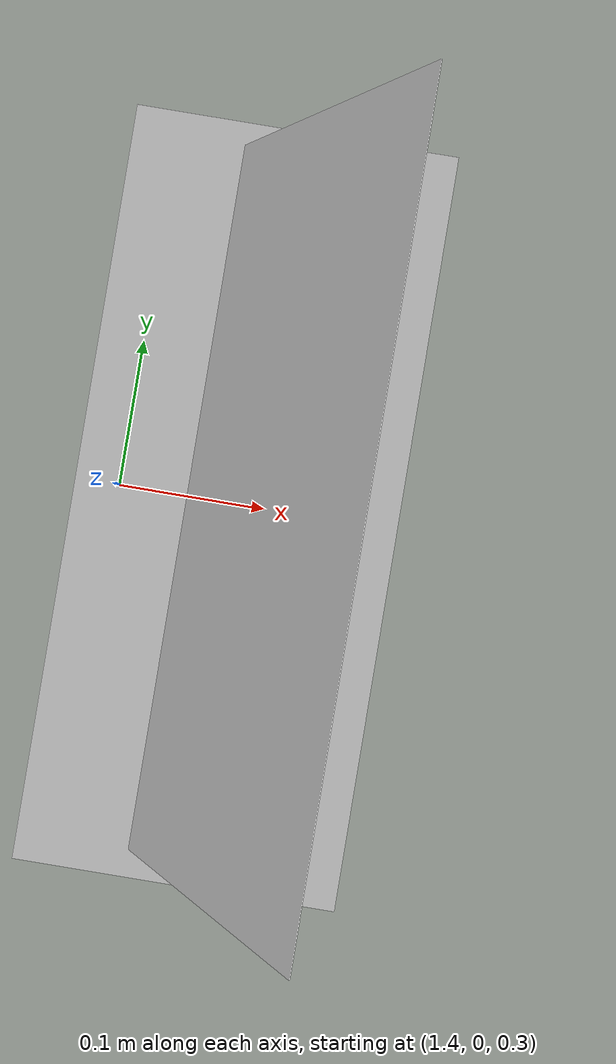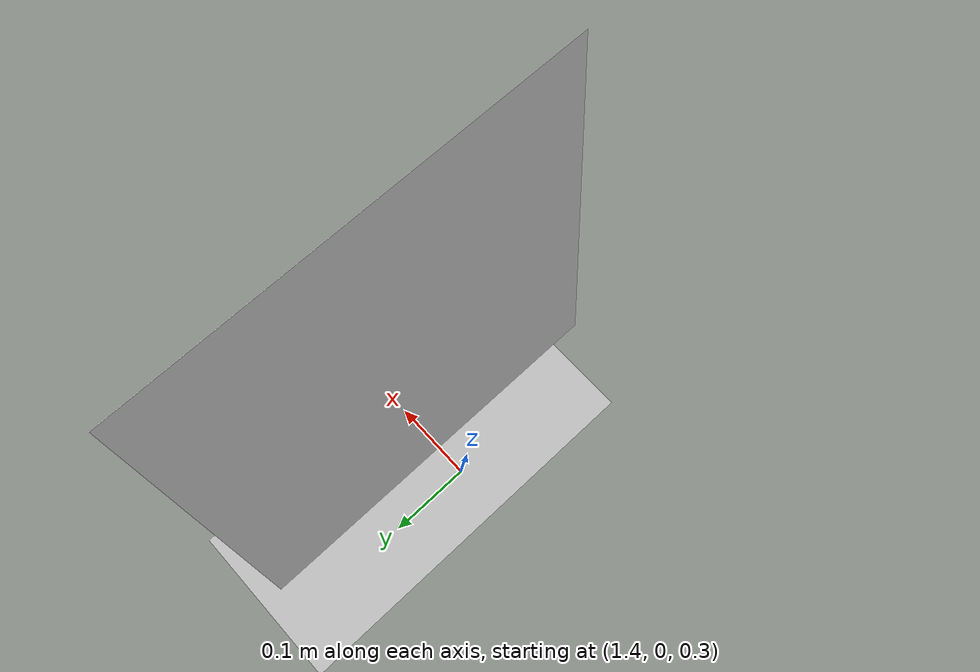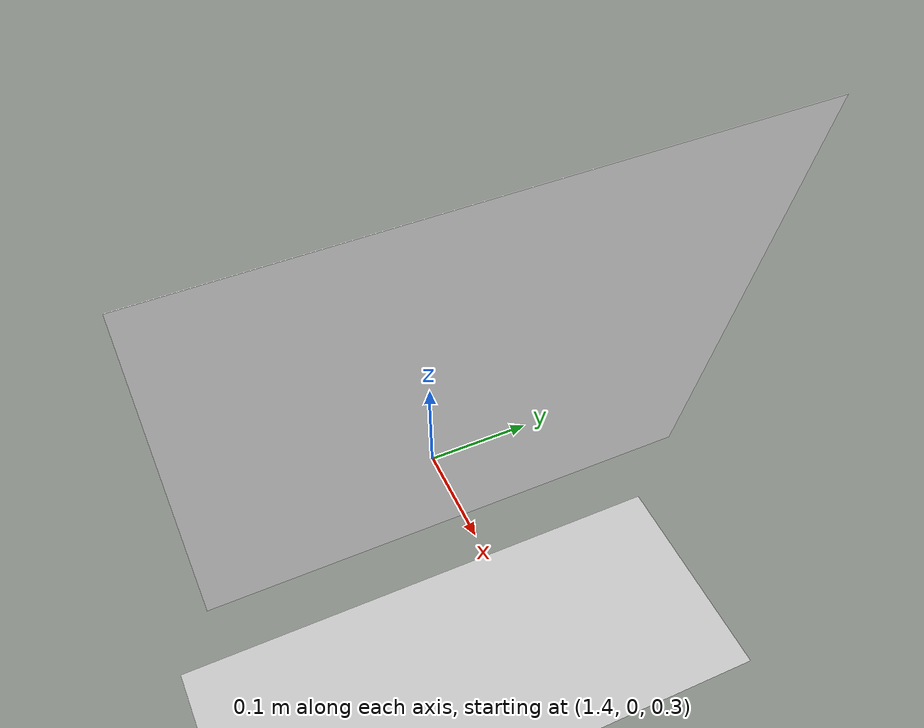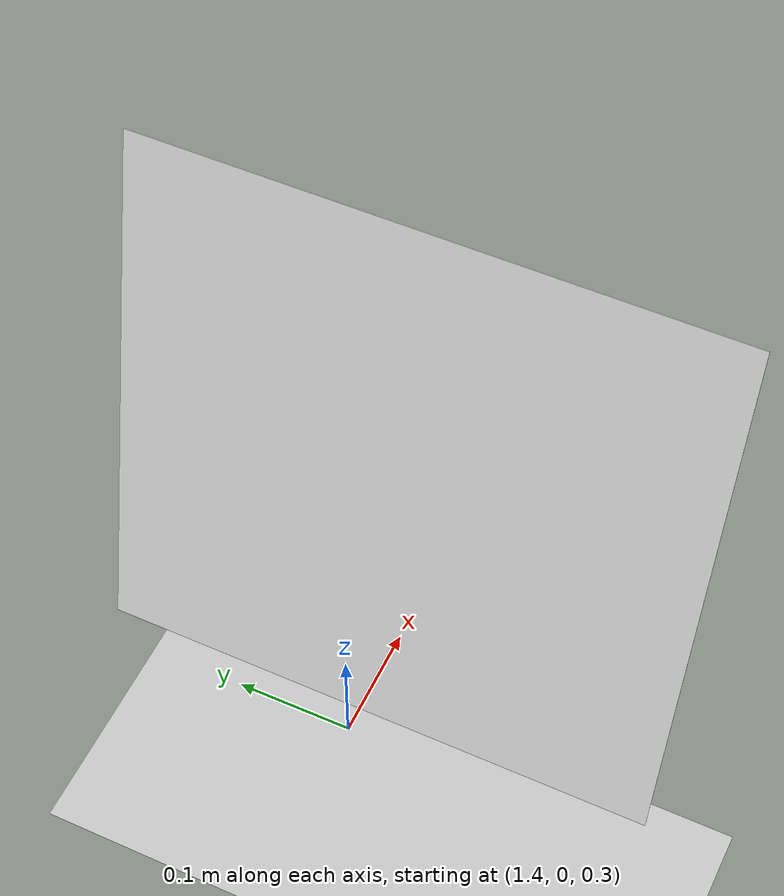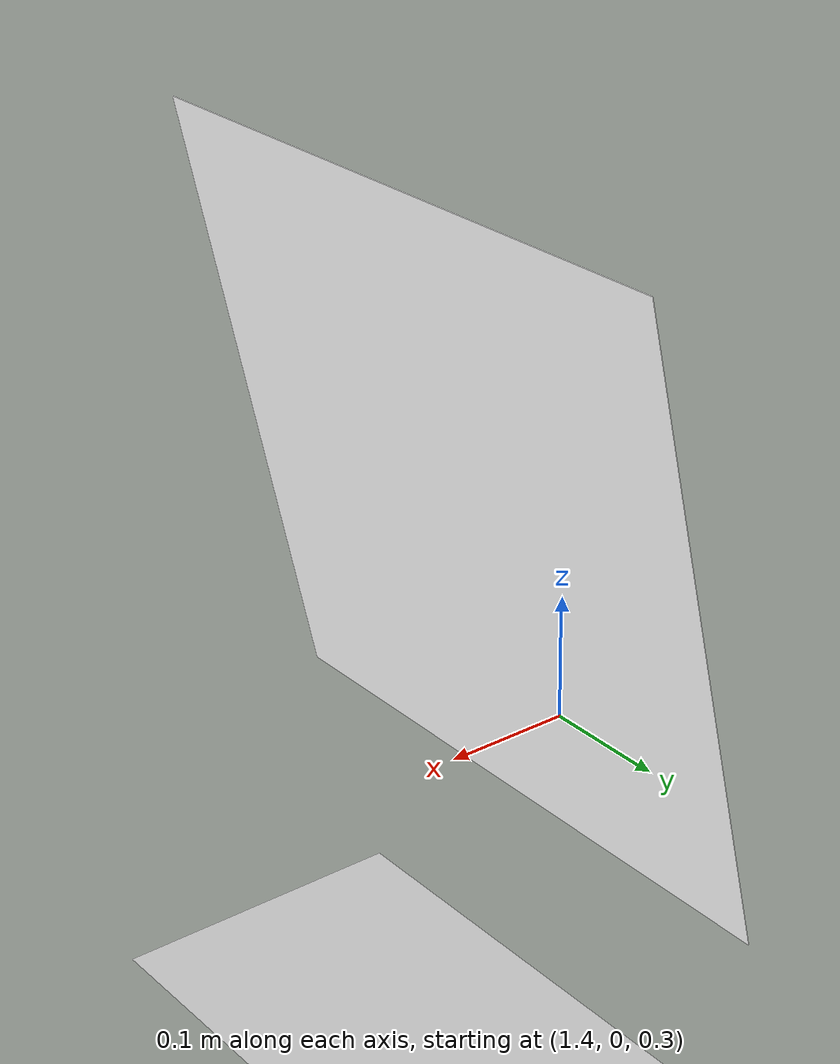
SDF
<?xml version="1.0" encoding="UTF-8"?>
<sdf version="1.9">
    <world name="aruco">

    <plugin filename="gz-sim-physics-system" name="gz::sim::systems::Physics"/>
    <plugin filename="gz-sim-user-commands-system" name="gz::sim::systems::UserCommands"/>
    <plugin filename="gz-sim-scene-broadcaster-system" name="gz::sim::systems::SceneBroadcaster"/>
    <plugin filename="gz-sim-sensors-system" name="gz::sim::systems::Sensors"><render_engine>ogre2</render_engine></plugin>
    <plugin filename="gz-sim-contact-system" name="gz::sim::systems::Contact"></plugin>
    <plugin filename="gz-sim-imu-system" name="gz::sim::systems::Imu"></plugin>
    <plugin filename="gz-sim-navsat-system" name="gz::sim::systems::NavSat"></plugin>

    <physics type="ode">
      <max_step_size>0.004</max_step_size>
      <real_time_factor>1.0</real_time_factor>
      <real_time_update_rate>250</real_time_update_rate>
    </physics>
    <gravity>0 0 -9.8</gravity>
    <magnetic_field>6e-06 2.3e-05 -4.2e-05</magnetic_field>
    <atmosphere type="adiabatic"/>
    <scene>
      <grid>false</grid>
      <ambient>0.4 0.4 0.4 1</ambient>
      <background>0.7 0.7 0.7 1</background>
      <shadows>true</shadows>
    </scene>
    <model name="ground_plane">
      <static>true</static>
      <link name="link">
        <collision name="collision">
          <geometry>
            <plane>
              <normal>0 0 1</normal>
              <size>1 1</size>
            </plane>
          </geometry>
          <surface>
            <friction>
              <ode/>
            </friction>
            <bounce/>
            <contact/>
          </surface>
        </collision>
        <visual name="visual">
          <geometry>
            <plane>
              <normal>0 0 1</normal>
              <size>100 100</size>
            </plane>
          </geometry>
          <material>
            <ambient>0.8 0.8 0.8 1</ambient>
            <diffuse>0.8 0.8 0.8 1</diffuse>
            <specular>0.8 0.8 0.8 1</specular>
          </material>
        </visual>
        <pose>0 0 0 0 -0 0</pose>
        <inertial>
          <pose>0 0 0 0 -0 0</pose>
          <mass>1</mass>
          <inertia>
            <ixx>1</ixx>
            <ixy>0</ixy>
            <ixz>0</ixz>
            <iyy>1</iyy>
            <iyz>0</iyz>
            <izz>1</izz>
          </inertia>
        </inertial>
        <enable_wind>false</enable_wind>
      </link>
      <pose>0 0 0 0 -0 0</pose>
      <self_collide>false</self_collide>
    </model>
    <light name="sunUTC" type="directional">
      <pose>0 0 500 0 -0 0</pose>
      <cast_shadows>true</cast_shadows>
      <intensity>1</intensity>
      <direction>0.001 0.625 -0.78</direction>
      <diffuse>0.904 0.904 0.904 1</diffuse>
      <specular>0.271 0.271 0.271 1</specular>
      <attenuation>
        <range>2000</range>
        <linear>0</linear>
        <constant>1</constant>
        <quadratic>0</quadratic>
      </attenuation>
      <spot>
        <inner_angle>0</inner_angle>
        <outer_angle>0</outer_angle>
        <falloff>0</falloff>
      </spot>
    </light>
    <spherical_coordinates>
      <surface_model>EARTH_WGS84</surface_model>
      <world_frame_orientation>ENU</world_frame_orientation>
      <latitude_deg>47.397971057728974</latitude_deg>
      <longitude_deg> 8.546163739800146</longitude_deg>
      <elevation>0</elevation>
    </spherical_coordinates>

    <include>
      <uri>model://arucotag</uri>
    </include>
  </world>
</sdf>

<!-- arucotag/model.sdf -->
<sdf version='1.9'>
  <model name='arucotag'>
    <static>true</static>
    <pose>1.5 0 0.5 0 -1.35 0</pose>
    <link name='base'>
      <visual name='base_visual'>
        <geometry>
          <plane>
            <normal>0 0 1</normal>
            <size>0.5 0.5</size>
          </plane>
        </geometry>
        <material>
          <diffuse>1 1 1 1</diffuse>
          <specular>0.4 0.4 0.4 1</specular>
          <pbr>
            <metal>
              <albedo_map>model://arucotag/arucotag.png</albedo_map>
            </metal>
          </pbr>
        </material>
      </visual>
    </link>
  </model>
</sdf>
